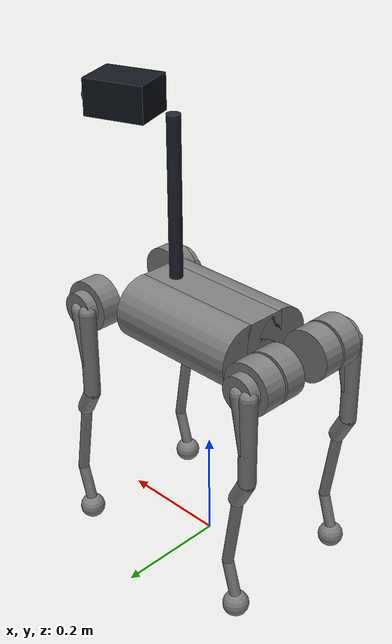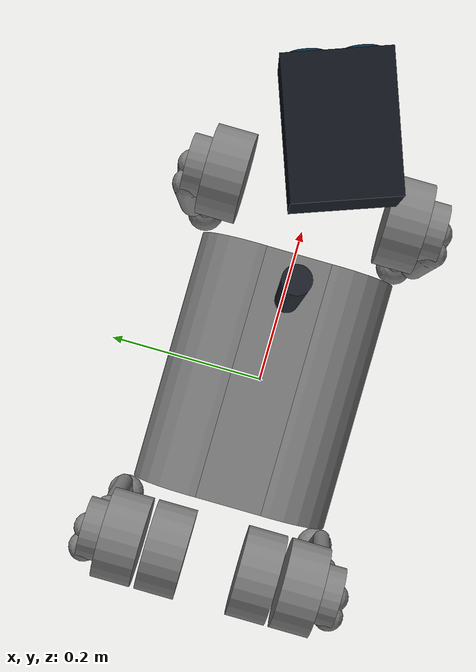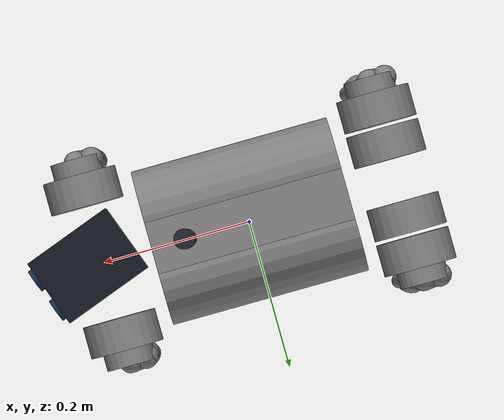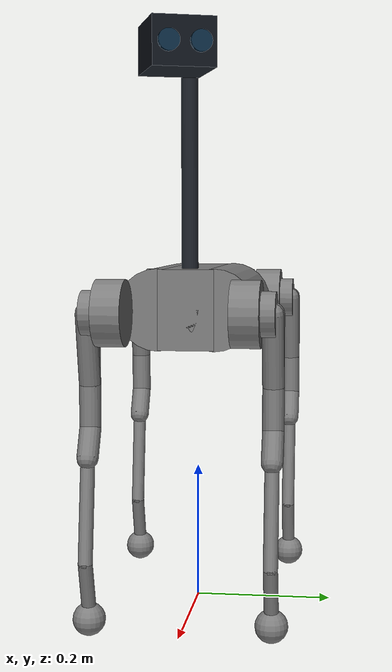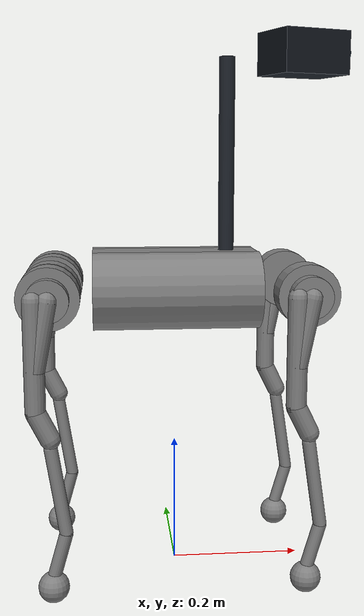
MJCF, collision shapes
<mujoco model="go1 feet only">
  <compiler angle="radian" meshdir="meshes" autolimits="true"/>

  <option iterations="1" ls_iterations="5" timestep="0.004" integrator="Euler">
    <flag eulerdamp="disable"/>
  </option>

  <default>
    <default class="go1">
      <!-- This globaly disables all collisions. -->
      <geom condim="1" contype="0" conaffinity="0"/>
      <joint axis="0 1 0" armature="0.005" damping="0.5"/>
      <position forcerange="-23.7 23.7" inheritrange="1" kp="35"/>
      <default class="abduction">
        <joint axis="1 0 0" range="-0.863 0.863" frictionloss="0.3"/>
      </default>
      <default class="hip">
        <joint range="-0.686 4.501" frictionloss="0.3"/>
      </default>
      <default class="knee">
        <joint range="-2.818 -0.888" frictionloss="1.0"/>
        <position forcerange="-35.55 35.55"/>
      </default>
      <default class="visual">
        <geom type="mesh" contype="0" conaffinity="0" group="2" material="dark"/>
      </default>
      <default class="collision">
        <geom group="3" type="capsule"/>
        <default class="hip_left1">
          <geom size="0.046 0.02" pos="0 0.045 0" quat="1 1 0 0" type="cylinder"/>
        </default>
        <default class="hip_left2">
          <geom size="0.031 0.02" pos="0 0.065 0" quat="1 1 0 0" type="cylinder"/>
        </default>
        <default class="hip_left3">
          <geom size="0.046 0.02" quat="1 1 0 0" type="cylinder"/>
        </default>
        <default class="hip_right1">
          <geom size="0.046 0.02" pos="0 -0.045 0" quat="1 1 0 0" type="cylinder"/>
        </default>
        <default class="hip_right2">
          <geom size="0.031 0.02" pos="0 -0.065 0" quat="1 1 0 0" type="cylinder"/>
        </default>
        <default class="hip_right3">
          <geom size="0.046 0.02" quat="1 1 0 0" type="cylinder"/>
        </default>
        <default class="thigh1">
          <geom size="0.015" fromto="-0.02 0 0 -0.02 0 -0.16"/>
        </default>
        <default class="thigh2">
          <geom size="0.015" fromto="0 0 0 -0.02 0 -0.1"/>
        </default>
        <default class="thigh3">
          <geom size="0.015" fromto="-0.02 0 -0.16 0 0 -0.2"/>
        </default>
        <default class="calf1">
          <geom size="0.01" fromto="0 0 0 0.02 0 -0.13"/>
        </default>
        <default class="calf2">
          <geom size="0.01" fromto="0.02 0 -0.13 0 0 -0.2"/>
        </default>
        <default class="foot">
          <geom type="sphere" size="0.023" pos="0 0 -0.213" solimp="0.9 .95 0.023" contype="0" conaffinity="1"/>
        </default>
      </default>
    </default>
  </default>

  <asset>
    <material name="dark" rgba="0.22 0.25 0.29 1" specular="0.38" shininess="0.32"/>
    <mesh class="go1" file="trunk.stl"/>
    <mesh class="go1" file="hip.stl"/>
    <mesh class="go1" file="thigh_mirror.stl"/>
    <mesh class="go1" file="calf.stl"/>
    <mesh class="go1" file="thigh.stl"/>
  </asset>

  <worldbody>
    <light name="spotlight" mode="targetbodycom" target="trunk" pos="3 0 4"/>
    <body name="trunk" pos="0 0 0.445" childclass="go1">
      <camera name="track" pos="0.846 -1.3 0.316" xyaxes="0.866 0.500 0.000 -0.171 0.296 0.940" mode="trackcom"/>
      <camera name="top" pos="-1 0 1" xyaxes="0 -1 0 0.7 0 0.7" mode="trackcom"/>
      <camera name="side" pos="0 -1 .3" xyaxes="1 0 0 0 1 2" mode="trackcom"/>
      <camera name="back" pos="-1 0 .3" xyaxes="0 -1 0 1 0 2" mode="trackcom"/>
      <!-- A rigid sensor mast and visible RGB-D housing on the Go1 trunk. -->
      <body name="rgbd_mast" pos="0.08 0 0.055">
        <geom type="cylinder" size="0.012 0.145" pos="0 0 0.145"
              mass="0.04" rgba="0.12 0.14 0.17 1"
              contype="0" conaffinity="0" group="2"/>
        <camera name="omnivla_ego" pos="0.18 0 0.295"
                xyaxes="0 -1 0 0 0 1"
                mode="fixed" fovy="58"/>
        <body name="rgbd_head" pos="0.115 0 0.295"
              quat="0.984808 0 0 0.173648">
          <geom type="box" size="0.055 0.042 0.032"
                mass="0.12" rgba="0.07 0.09 0.12 1"
                contype="0" conaffinity="0" group="2"/>
          <geom type="cylinder" size="0.014 0.006" pos="0.055 -0.021 0"
                quat="0.707107 0 0.707107 0" mass="0.01" rgba="0.05 0.18 0.28 1"
                contype="0" conaffinity="0" group="2"/>
          <geom type="cylinder" size="0.014 0.006" pos="0.055 0.021 0"
                quat="0.707107 0 0.707107 0" mass="0.01" rgba="0.05 0.18 0.28 1"
                contype="0" conaffinity="0" group="2"/>
          <camera name="ego_rgbd" pos="0.065 0 0"
                  xyaxes="0 -1 0 0 0 1"
                  mode="fixed" fovy="58"/>
        </body>
      </body>
      <site name="head" pos="0.3 0 0" rgba="1 0 0 1" size="0.02" group="5"/>
      <inertial pos="0.0223 0.002 -0.0005" quat="-0.00342088 0.705204 0.000106698 0.708996" mass="5.204"
        diaginertia="0.0716565 0.0630105 0.0168101"/>
      <freejoint/>
      <geom class="visual" mesh="trunk"/>
      <geom class="collision" size="0.125 0.04 0.057" type="box"/>
      <geom class="collision" quat="1 0 1 0" pos="0 -0.04 0" size="0.058 0.125" type="cylinder"/>
      <geom class="collision" quat="1 0 1 0" pos="0 +0.04 0" size="0.058 0.125" type="cylinder"/>
      <site name="imu" pos="-0.01592 -0.06659 -0.00617" group="5"/>
      <body name="FR_hip" pos="0.1881 -0.04675 0">
        <inertial pos="-0.0049166 0.00762615 -8.865e-05" quat="0.507341 0.514169 0.495027 0.482891" mass="0.68"
          diaginertia="0.000734064 0.000468438 0.000398719"/>
        <joint class="abduction" name="FR_hip_joint"/>
        <geom class="visual" mesh="hip" quat="1 0 0 0"/>
        <geom class="hip_right1"/>
        <geom class="hip_right2"/>
        <body name="FR_thigh" pos="0 -0.08 0">
          <inertial pos="-0.00304722 0.019315 -0.0305004" quat="0.65243 -0.0272313 0.0775126 0.753383" mass="1.009"
            diaginertia="0.00478717 0.00460903 0.000709268"/>
          <joint class="hip" name="FR_thigh_joint"/>
          <geom class="visual" mesh="thigh_mirror"/>
          <geom class="thigh1"/>
          <geom class="thigh2"/>
          <geom class="thigh3"/>
          <body name="FR_calf" pos="0 0 -0.213">
            <inertial pos="0.00429862 0.000976676 -0.146197" quat="0.691246 0.00357467 0.00511118 0.722592"
              mass="0.195862" diaginertia="0.00149767 0.00148468 3.58427e-05"/>
            <joint class="knee" name="FR_calf_joint"/>
            <geom class="visual" mesh="calf"/>
            <geom class="calf1"/>
            <geom class="calf2"/>
            <geom name="FR" class="foot"/>
            <site name="FR" pos="0 0 -0.213" type="sphere" size="0.023" group="5"/>
          </body>
        </body>
      </body>
      <body name="FL_hip" pos="0.1881 0.04675 0">
        <inertial pos="-0.0049166 -0.00762615 -8.865e-05" quat="0.482891 0.495027 0.514169 0.507341" mass="0.68"
          diaginertia="0.000734064 0.000468438 0.000398719"/>
        <joint class="abduction" name="FL_hip_joint"/>
        <geom class="visual" mesh="hip"/>
        <geom class="hip_left1"/>
        <geom class="hip_left2"/>
        <body name="FL_thigh" pos="0 0.08 0">
          <inertial pos="-0.00304722 -0.019315 -0.0305004" quat="0.753383 0.0775126 -0.0272313 0.65243" mass="1.009"
            diaginertia="0.00478717 0.00460903 0.000709268"/>
          <joint class="hip" name="FL_thigh_joint"/>
          <geom class="visual" mesh="thigh"/>
          <geom class="thigh1"/>
          <geom class="thigh2"/>
          <geom class="thigh3"/>
          <body name="FL_calf" pos="0 0 -0.213">
            <inertial pos="0.00429862 0.000976676 -0.146197" quat="0.691246 0.00357467 0.00511118 0.722592"
              mass="0.195862" diaginertia="0.00149767 0.00148468 3.58427e-05"/>
            <joint class="knee" name="FL_calf_joint"/>
            <geom class="visual" mesh="calf"/>
            <geom class="calf1"/>
            <geom class="calf2"/>
            <geom name="FL" class="foot"/>
            <site name="FL" pos="0 0 -0.213" type="sphere" size="0.023" group="5"/>
          </body>
        </body>
      </body>
      <body name="RR_hip" pos="-0.1881 -0.04675 0">
        <inertial pos="0.0049166 0.00762615 -8.865e-05" quat="0.495027 0.482891 0.507341 0.514169" mass="0.68"
          diaginertia="0.000734064 0.000468438 0.000398719"/>
        <joint class="abduction" name="RR_hip_joint"/>
        <geom class="visual" quat="0 0 0 -1" mesh="hip"/>
        <geom class="hip_right1"/>
        <geom class="hip_right2"/>
        <geom class="hip_right3"/>
        <body name="RR_thigh" pos="0 -0.08 0">
          <inertial pos="-0.00304722 0.019315 -0.0305004" quat="0.65243 -0.0272313 0.0775126 0.753383" mass="1.009"
            diaginertia="0.00478717 0.00460903 0.000709268"/>
          <joint class="hip" name="RR_thigh_joint"/>
          <geom class="visual" mesh="thigh_mirror"/>
          <geom class="thigh1"/>
          <geom class="thigh2"/>
          <geom class="thigh3"/>
          <body name="RR_calf" pos="0 0 -0.213">
            <inertial pos="0.00429862 0.000976676 -0.146197" quat="0.691246 0.00357467 0.00511118 0.722592"
              mass="0.195862" diaginertia="0.00149767 0.00148468 3.58427e-05"/>
            <joint class="knee" name="RR_calf_joint"/>
            <geom class="visual" mesh="calf"/>
            <geom class="calf1"/>
            <geom class="calf2"/>
            <geom name="RR" class="foot"/>
            <site name="RR" pos="0 0 -0.213" type="sphere" size="0.023" group="5"/>
          </body>
        </body>
      </body>
      <body name="RL_hip" pos="-0.1881 0.04675 0">
        <inertial pos="0.0049166 -0.00762615 -8.865e-05" quat="0.514169 0.507341 0.482891 0.495027" mass="0.68"
          diaginertia="0.000734064 0.000468438 0.000398719"/>
        <joint class="abduction" name="RL_hip_joint"/>
        <geom class="visual" quat="0 0 1 0" mesh="hip"/>
        <geom class="hip_left1"/>
        <geom class="hip_left2"/>
        <geom class="hip_left3"/>
        <body name="RL_thigh" pos="0 0.08 0">
          <inertial pos="-0.00304722 -0.019315 -0.0305004" quat="0.753383 0.0775126 -0.0272313 0.65243" mass="1.009"
            diaginertia="0.00478717 0.00460903 0.000709268"/>
          <joint class="hip" name="RL_thigh_joint"/>
          <geom class="visual" mesh="thigh"/>
          <geom class="thigh1"/>
          <geom class="thigh2"/>
          <geom class="thigh3"/>
          <body name="RL_calf" pos="0 0 -0.213">
            <inertial pos="0.00429862 0.000976676 -0.146197" quat="0.691246 0.00357467 0.00511118 0.722592"
              mass="0.195862" diaginertia="0.00149767 0.00148468 3.58427e-05"/>
            <joint class="knee" name="RL_calf_joint"/>
            <geom class="visual" mesh="calf"/>
            <geom class="calf1"/>
            <geom class="calf2"/>
            <geom name="RL" class="foot"/>
            <site name="RL" pos="0 0 -0.213" type="sphere" size="0.023" group="5"/>
          </body>
        </body>
      </body>
    </body>
  </worldbody>

  <actuator>
    <position class="abduction" name="FR_hip" joint="FR_hip_joint"/>
    <position class="hip" name="FR_thigh" joint="FR_thigh_joint"/>
    <position class="knee" name="FR_calf" joint="FR_calf_joint"/>
    <position class="abduction" name="FL_hip" joint="FL_hip_joint"/>
    <position class="hip" name="FL_thigh" joint="FL_thigh_joint"/>
    <position class="knee" name="FL_calf" joint="FL_calf_joint"/>
    <position class="abduction" name="RR_hip" joint="RR_hip_joint"/>
    <position class="hip" name="RR_thigh" joint="RR_thigh_joint"/>
    <position class="knee" name="RR_calf" joint="RR_calf_joint"/>
    <position class="abduction" name="RL_hip" joint="RL_hip_joint"/>
    <position class="hip" name="RL_thigh" joint="RL_thigh_joint"/>
    <position class="knee" name="RL_calf" joint="RL_calf_joint"/>
  </actuator>

  <sensor>
    <gyro site="imu" name="gyro"/>
    <velocimeter site="imu" name="local_linvel"/>
    <accelerometer site="imu" name="accelerometer"/>
    <framepos objtype="site" objname="imu" name="position"/>
    <framezaxis objtype="site" objname="imu" name="upvector"/>
    <framexaxis objtype="site" objname="imu" name="forwardvector"/>
    <framelinvel objtype="site" objname="imu" name="global_linvel"/>
    <frameangvel objtype="site" objname="imu" name="global_angvel"/>
    <framequat objtype="site" objname="imu" name="orientation"/>
    <framelinvel objtype="site" objname="FR" name="FR_global_linvel"/>
    <framelinvel objtype="site" objname="FL" name="FL_global_linvel"/>
    <framelinvel objtype="site" objname="RR" name="RR_global_linvel"/>
    <framelinvel objtype="site" objname="RL" name="RL_global_linvel"/>
    <framepos objtype="site" objname="FR" name="FR_pos" reftype="site" refname="imu"/>
    <framepos objtype="site" objname="FL" name="FL_pos" reftype="site" refname="imu"/>
    <framepos objtype="site" objname="RR" name="RR_pos" reftype="site" refname="imu"/>
    <framepos objtype="site" objname="RL" name="RL_pos" reftype="site" refname="imu"/>
  </sensor>
</mujoco>
